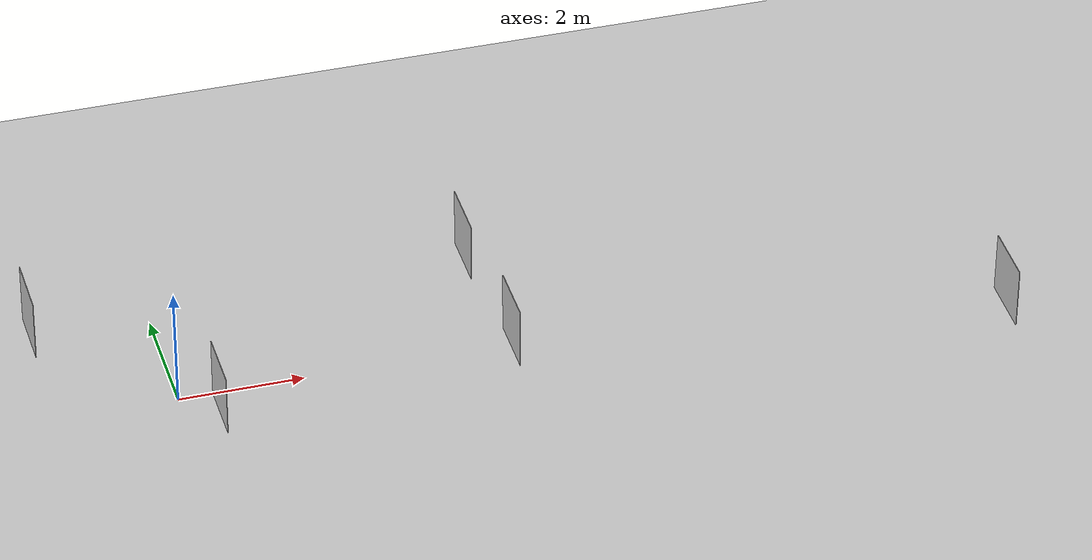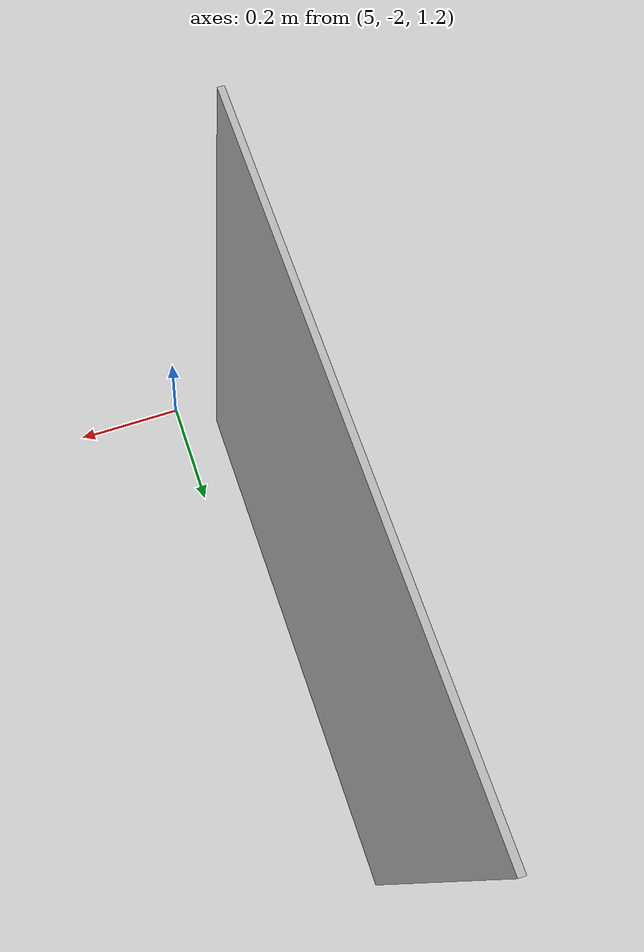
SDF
<sdf version="1.7">
 <world name="default">
  <light name="sun" type="directional">
   <pose>0 0 10 0 -0 0</pose>
   <diffuse>0.8 0.8 0.8 1</diffuse>
   <specular>0.2 0.2 0.2 1</specular>
   <attenuation>
    <range>1000</range>
    <constant>0.9</constant>
    <linear>0.01</linear>
    <quadratic>0.001</quadratic>
   </attenuation>
   <direction>-0.5 0.1 -0.9</direction>
   <spot><inner_angle>0</inner_angle><outer_angle>0</outer_angle><falloff>0</falloff></spot>
  </light>
  <model name="ground_plane">
   <static>1</static>
   <link name="link">
    <collision name="collision">
     <geometry><plane><normal>0 0 1</normal><size>100 100</size></plane></geometry>
     <surface>
      <contact><collide_bitmask>65535</collide_bitmask></contact>
      <friction><ode><mu>100</mu><mu2>50</mu2></ode></friction>
     </surface>
    </collision>
    <visual name="visual">
     <cast_shadows>0</cast_shadows>
     <geometry><plane><normal>0 0 1</normal><size>100 100</size></plane></geometry>
     <material>
      <script><uri>file://media/materials/scripts/gazebo.material</uri><name>Gazebo/Grey</name></script>
     </material>
    </visual>
   </link>
  </model>
  <gravity>0 0 -9.8</gravity>
  <magnetic_field>6e-06 2.3e-05 -4.2e-05</magnetic_field>
  <atmosphere type="adiabatic"/>
  <physics type="ode">
   <max_step_size>0.001</max_step_size>
   <real_time_factor>1</real_time_factor>
   <real_time_update_rate>1000</real_time_update_rate>
  </physics>
  <scene><ambient>0.4 0.4 0.4 1</ambient><background>0.7 0.7 0.7 1</background><shadows>1</shadows></scene>
  <spherical_coordinates>
   <surface_model>EARTH_WGS84</surface_model>
   <latitude_deg>0</latitude_deg>
   <longitude_deg>0</longitude_deg>
   <elevation>0</elevation>
   <heading_deg>0</heading_deg>
  </spherical_coordinates>
  <model name="Apriltag36_11_00000">
   <link name="main">
    <visual name="main_Visual">
     <geometry><box><size>1 1 0.01</size></box></geometry>
     <material>
      <script>
       <uri>model://Apriltag36_11_00000/materials/scripts</uri>
       <uri>model://Apriltag36_11_00000/materials/textures</uri>
       <name>Apriltag36_11_00000</name>
      </script>
     </material>
    </visual>
   </link>
   <static>1</static>
   <pose>4.94816 1.49463 1.09736 3.14159 -1.57079 3.14159</pose>
  </model>
  <model name="Apriltag36_11_00001">
   <link name="main">
    <visual name="main_Visual">
     <geometry><box><size>1 1 0.01</size></box></geometry>
     <material>
      <script>
       <uri>model://Apriltag36_11_00001/materials/scripts</uri>
       <uri>model://Apriltag36_11_00001/materials/textures</uri>
       <name>Apriltag36_11_00001</name>
      </script>
     </material>
    </visual>
   </link>
   <static>1</static>
   <pose>4.91167 -1.4883 1.6243 3.14159 -1.57079 3.14159</pose>
  </model>
  <model name="Apriltag36_11_00002">
   <link name="main">
    <visual name="main_Visual">
     <geometry><box><size>1 1 0.01</size></box></geometry>
     <material>
      <script>
       <uri>model://Apriltag36_11_00002/materials/scripts</uri>
       <uri>model://Apriltag36_11_00002/materials/textures</uri>
       <name>Apriltag36_11_00002</name>
      </script>
     </material>
    </visual>
   </link>
   <static>1</static>
   <pose>-2.11108 0.809963 1.52872 3.14159 1.57079 3.14159</pose>
  </model>
  <model name="Apriltag36_11_00003">
   <link name="main">
    <visual name="main_Visual">
     <geometry><box><size>1 1 0.01</size></box></geometry>
     <material>
      <script>
       <uri>model://Apriltag36_11_00003/materials/scripts</uri>
       <uri>model://Apriltag36_11_00003/materials/textures</uri>
       <name>Apriltag36_11_00003</name>
      </script>
     </material>
    </visual>
   </link>
   <static>1</static>
   <pose>0.289847 -1.74034 1.50247 3.14159 1.57079 3.14159</pose>
  </model>
  <model name="Apriltag36_11_00004">
   <link name="main">
    <visual name="main_Visual">
     <geometry><box><size>1 1 0.01</size></box></geometry>
     <material>
      <script>
       <uri>model://Apriltag36_11_00004/materials/scripts</uri>
       <uri>model://Apriltag36_11_00004/materials/textures</uri>
       <name>Apriltag36_11_00004</name>
      </script>
     </material>
    </visual>
   </link>
   <static>1</static>
   <pose>12.5685 -2.38642 1.49521 0 -1.56111 0</pose>
  </model>
 </world>
</sdf>
